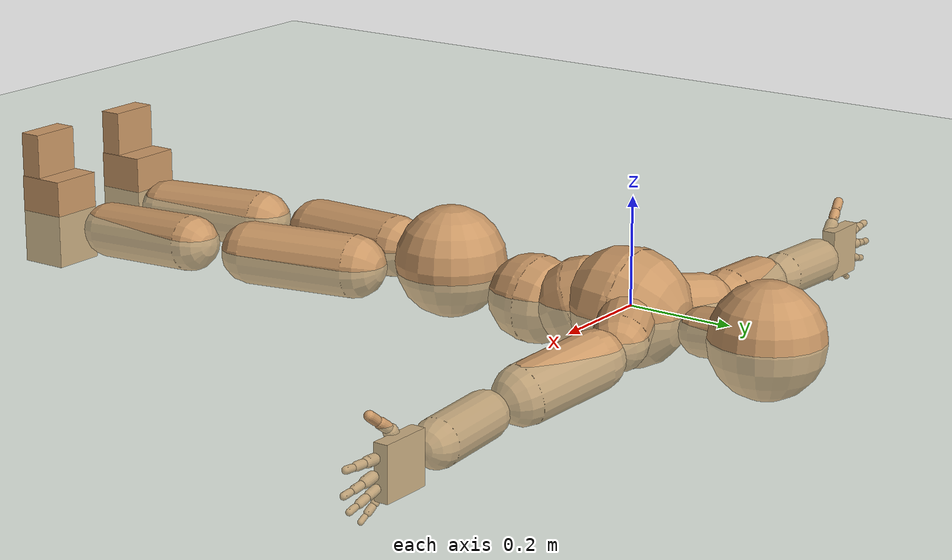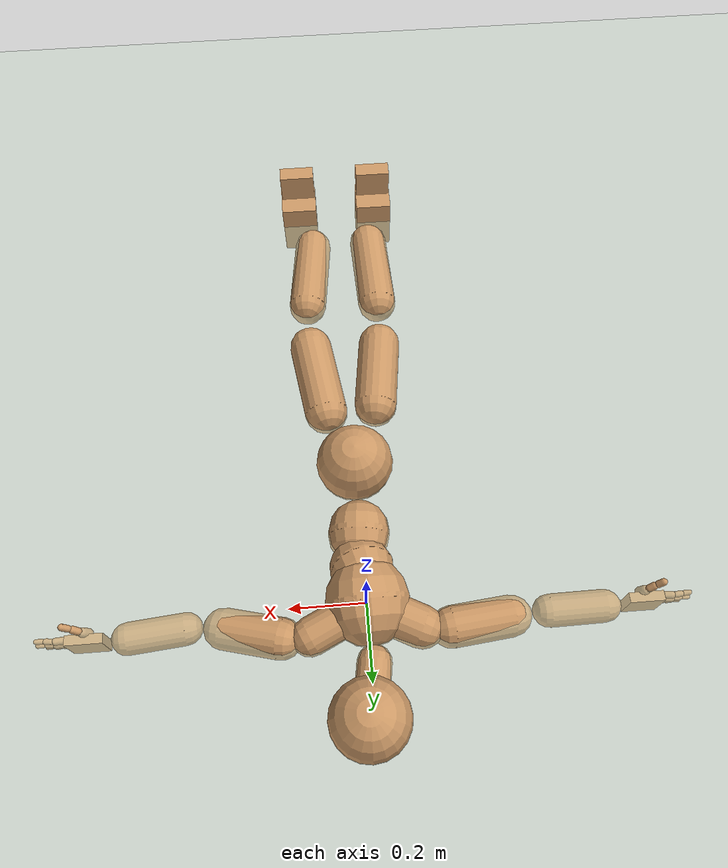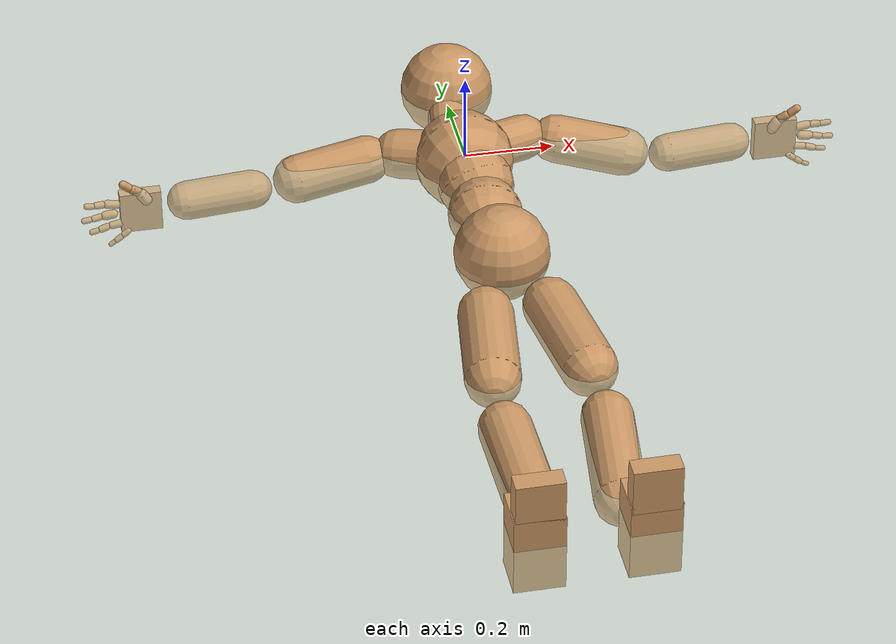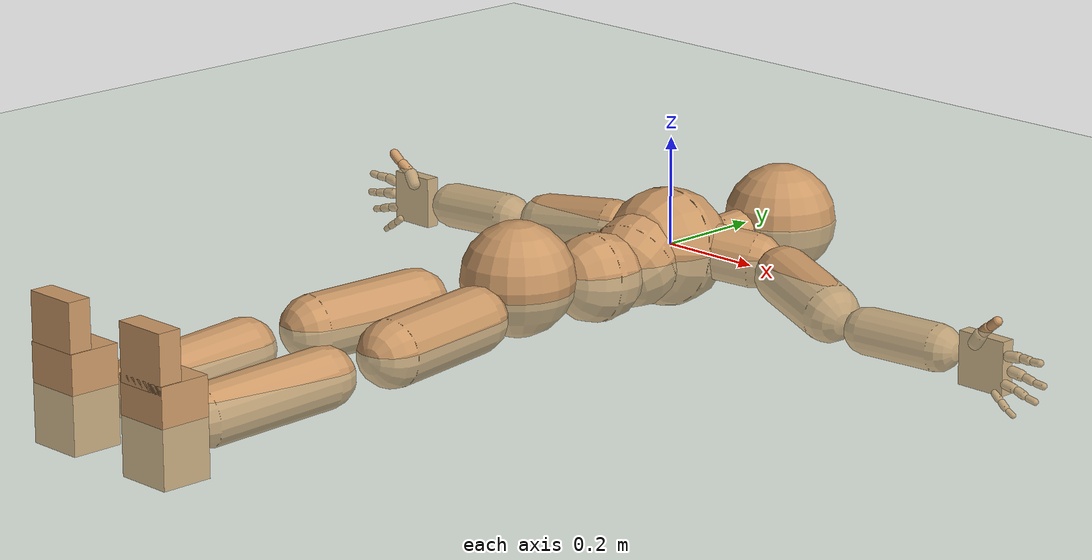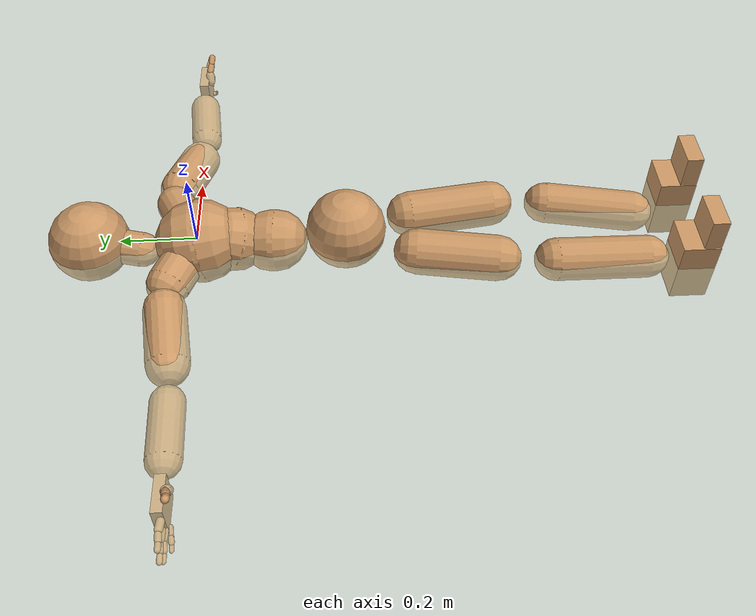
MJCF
<mujoco model="humanoid">
  <compiler coordinate="local"/>
  <default>
    <joint damping="0.0" armature="0.01" stiffness="0.0" limited="true"/>
    <geom conaffinity="1" condim="3" contype="7" margin="0.001" rgba="0.8 0.6 .4 1"/>
  </default>
  <asset>
    <texture type="skybox" builtin="gradient" rgb1=".4 .5 .6" rgb2="0 0 0" width="100" height="100"/>
    <texture builtin="flat" height="1278" mark="cross" markrgb="1 1 1" name="texgeom" random="0.01" rgb1="0.8 0.6 0.4" rgb2="0.8 0.6 0.4" type="cube" width="127"/>
    <texture builtin="checker" height="100" name="texplane" rgb1="0 0 0" rgb2="0.8 0.8 0.8" type="2d" width="100"/>
    <material name="MatPlane" reflectance="0.5" shininess="1" specular="1" texrepeat="60 60" texture="texplane"/>
    <material name="geom" texture="texgeom" texuniform="true"/>
  </asset>
  <worldbody>
    <light cutoff="100" diffuse="1 1 1" dir="-0 0 -1.3" directional="true" exponent="1" pos="0 0 1.3" specular=".1 .1 .1"/>
    <geom conaffinity="1" condim="3" name="floor" pos="0 0 0" rgba="0.8 0.9 0.8 1" size="100 100 .2" type="plane" material="MatPlane"/>
    <body name="Pelvis" pos="0.003 -0.389 0.0154">
      <freejoint name="Pelvis"/>
      <geom type="sphere" contype="1" conaffinity="1" density="4629.6296296296305" size="0.1043" pos="0.0000 0.0000 0.0000" name="Pelvis"/>
      <body name="L_Hip" pos="0.0582 -0.0978 -0.0232">
        <joint name="L_Hip_x" type="hinge" pos="0 0 0" axis="1 0 0" user="250 2.5 1 500 10 2" armature="0.01" range="-90.0000 90.0000" damping="0" stiffness="0"/>
        <joint name="L_Hip_y" type="hinge" pos="0 0 0" axis="0 1 0" user="250 2.5 1 500 10 2" armature="0.01" range="-90.0000 90.0000" damping="0" stiffness="0"/>
        <joint name="L_Hip_z" type="hinge" pos="0 0 0" axis="0 0 1" user="250 2.5 1 500 10 2" armature="0.01" range="-90.0000 90.0000" damping="0" stiffness="0"/>
        <geom type="capsule" contype="1" conaffinity="1" density="2040.816327" fromto="0.0112 -0.0735 -0.0010 0.0447 -0.2940 -0.0039" size="0.0604" name="L_Hip"/>
        <body name="L_Knee" pos="0.0559 -0.3674 -0.0049">
          <joint name="L_Knee_x" type="hinge" pos="0 0 0" axis="1 0 0" user="250 2.5 1 500 10 2" armature="0.01" range="-180.0000 180.0000" damping="0" stiffness="0"/>
          <joint name="L_Knee_y" type="hinge" pos="0 0 0" axis="0 1 0" user="250 2.5 1 500 10 2" armature="0.01" range="-5.6250 5.6250" damping="0" stiffness="0"/>
          <joint name="L_Knee_z" type="hinge" pos="0 0 0" axis="0 0 1" user="250 2.5 1 500 10 2" armature="0.01" range="-5.6250 5.6250" damping="0" stiffness="0"/>
          <geom type="capsule" contype="1" conaffinity="1" density="1234.567901" fromto="-0.0090 -0.0787 -0.0061 -0.0358 -0.3149 -0.0245" size="0.0545" name="L_Knee"/>
          <body name="L_Ankle" pos="-0.0448 -0.3936 -0.0307">
            <joint name="L_Ankle_x" type="hinge" pos="0 0 0" axis="1 0 0" user="150 2.5 1 500 10 2" armature="0.01" range="-90.0000 90.0000" damping="0" stiffness="0"/>
            <joint name="L_Ankle_y" type="hinge" pos="0 0 0" axis="0 1 0" user="150 2.5 1 500 10 2" armature="0.01" range="-90.0000 90.0000" damping="0" stiffness="0"/>
            <joint name="L_Ankle_z" type="hinge" pos="0 0 0" axis="0 0 1" user="150 2.5 1 500 10 2" armature="0.01" range="-90.0000 90.0000" damping="0" stiffness="0"/>
            <geom type="box" density="452.943956" pos="0.0433 -0.0277 0.0240" size="0.0524 0.0473 0.0876" quat="1.0000 0.0000 0.0000 0.0000" name="L_Ankle"/>
            <body name="L_Toe" pos="0.0503 -0.0568 0.1213">
              <joint name="L_Toe_x" type="hinge" pos="0 0 0" axis="1 0 0" user="150 1 1 500 1 1" armature="0.01" range="-90.0000 90.0000" damping="0" stiffness="0"/>
              <joint name="L_Toe_y" type="hinge" pos="0 0 0" axis="0 1 0" user="150 1 1 500 1 1" armature="0.01" range="-45.0000 45.0000" damping="0" stiffness="0"/>
              <joint name="L_Toe_z" type="hinge" pos="0 0 0" axis="0 0 1" user="150 1 1 500 1 1" armature="0.01" range="-45.0000 45.0000" damping="0" stiffness="0"/>
              <geom type="box" density="421.553958" pos="-0.0071 0.0033 0.0264" size="0.05 0.0215 0.0514" quat="1.0000 0.0000 0.0000 0.0000" name="L_Toe"/>
            </body>
          </body>
        </body>
      </body>
      <body name="R_Hip" pos="-0.0629 -0.1105 -0.0172">
        <joint name="R_Hip_x" type="hinge" pos="0 0 0" axis="1 0 0" user="250 2.5 1 500 10 2" armature="0.01" range="-90.0000 90.0000" damping="0" stiffness="0"/>
        <joint name="R_Hip_y" type="hinge" pos="0 0 0" axis="0 1 0" user="250 2.5 1 500 10 2" armature="0.01" range="-90.0000 90.0000" damping="0" stiffness="0"/>
        <joint name="R_Hip_z" type="hinge" pos="0 0 0" axis="0 0 1" user="250 2.5 1 500 10 2" armature="0.01" range="-90.0000 90.0000" damping="0" stiffness="0"/>
        <geom type="capsule" contype="1" conaffinity="1" density="2040.816327" fromto="-0.0091 -0.0699 -0.0027 -0.0364 -0.2796 -0.0108" size="0.0597" name="R_Hip"/>
        <body name="R_Knee" pos="-0.0454 -0.3495 -0.0135">
          <joint name="R_Knee_x" type="hinge" pos="0 0 0" axis="1 0 0" user="250 2.5 1 500 10 2" armature="0.01" range="-180.0000 180.0000" damping="0" stiffness="0"/>
          <joint name="R_Knee_y" type="hinge" pos="0 0 0" axis="0 1 0" user="250 2.5 1 500 10 2" armature="0.01" range="-5.6250 5.6250" damping="0" stiffness="0"/>
          <joint name="R_Knee_z" type="hinge" pos="0 0 0" axis="0 0 1" user="250 2.5 1 500 10 2" armature="0.01" range="-5.6250 5.6250" damping="0" stiffness="0"/>
          <geom type="capsule" contype="1" conaffinity="1" density="1234.567901" fromto="0.0031 -0.0802 -0.0037 0.0122 -0.3209 -0.0150" size="0.0561" name="R_Knee"/>
          <body name="R_Ankle" pos="0.0153 -0.4011 -0.0187">
            <joint name="R_Ankle_x" type="hinge" pos="0 0 0" axis="1 0 0" user="150 1 1 500 10 2" armature="0.01" range="-90.0000 90.0000" damping="0" stiffness="0"/>
            <joint name="R_Ankle_y" type="hinge" pos="0 0 0" axis="0 1 0" user="150 1 1 500 10 2" armature="0.01" range="-90.0000 90.0000" damping="0" stiffness="0"/>
            <joint name="R_Ankle_z" type="hinge" pos="0 0 0" axis="0 0 1" user="150 1 1 500 10 2" armature="0.01" range="-90.0000 90.0000" damping="0" stiffness="0"/>
            <geom type="box" density="452.937072" pos="-0.0255 -0.0254 0.0146" size="0.0524 0.0473 0.0876" quat="1.0000 0.0000 0.0000 0.0000" name="R_Ankle"/>
            <body name="R_Toe" pos="-0.0409 -0.0572 0.1221">
              <joint name="R_Toe_x" type="hinge" pos="0 0 0" axis="1 0 0" user="150 1 1 500 1 1" armature="0.01" range="-90.0000 90.0000" damping="0" stiffness="0"/>
              <joint name="R_Toe_y" type="hinge" pos="0 0 0" axis="0 1 0" user="150 1 1 500 1 1" armature="0.01" range="-45.0000 45.0000" damping="0" stiffness="0"/>
              <joint name="R_Toe_z" type="hinge" pos="0 0 0" axis="0 0 1" user="150 1 1 500 1 1" armature="0.01" range="-45.0000 45.0000" damping="0" stiffness="0"/>
              <geom type="box" density="421.555447" pos="0.0155 0.0060 0.0162" size="0.05 0.0215 0.0514" quat="1.0000 0.0000 0.0000 0.0000" name="R_Toe"/>
            </body>
          </body>
        </body>
      </body>
      <body name="Torso" pos="-0.0028 0.1169 -0.0329">
        <joint name="Torso_x" type="hinge" pos="0 0 0" axis="1 0 0" user="500 5 1 500 10 2" armature="0.01" range="-60.0000 60.0000" damping="0" stiffness="0"/>
        <joint name="Torso_y" type="hinge" pos="0 0 0" axis="0 1 0" user="500 5 1 500 10 2" armature="0.01" range="-60.0000 60.0000" damping="0" stiffness="0"/>
        <joint name="Torso_z" type="hinge" pos="0 0 0" axis="0 0 1" user="500 5 1 500 10 2" armature="0.01" range="-60.0000 60.0000" damping="0" stiffness="0"/>
        <geom type="capsule" contype="1" conaffinity="1" density="2040.816327" fromto="0.0050 0.0664 -0.0035 0.0061 0.0811 -0.0043" size="0.0816" name="Torso"/>
        <body name="Spine" pos="0.0111 0.1475 -0.0077">
          <joint name="Spine_x" type="hinge" pos="0 0 0" axis="1 0 0" user="500 5 1 500 10 2" armature="0.01" range="-60.0000 60.0000" damping="0" stiffness="0"/>
          <joint name="Spine_y" type="hinge" pos="0 0 0" axis="0 1 0" user="500 5 1 500 10 2" armature="0.01" range="-60.0000 60.0000" damping="0" stiffness="0"/>
          <joint name="Spine_z" type="hinge" pos="0 0 0" axis="0 0 1" user="500 5 1 500 10 2" armature="0.01" range="-60.0000 60.0000" damping="0" stiffness="0"/>
          <geom type="capsule" contype="1" conaffinity="1" density="2040.816327" fromto="-0.0054 0.0265 0.0132 -0.0066 0.0323 0.0161" size="0.0843" name="Spine"/>
          <body name="Chest" pos="-0.0119 0.0588 0.0293">
            <joint name="Chest_x" type="hinge" pos="0 0 0" axis="1 0 0" user="500 5 1 500 10 2" armature="0.01" range="-60.0000 60.0000" damping="0" stiffness="0"/>
            <joint name="Chest_y" type="hinge" pos="0 0 0" axis="0 1 0" user="500 5 1 500 10 2" armature="0.01" range="-60.0000 60.0000" damping="0" stiffness="0"/>
            <joint name="Chest_z" type="hinge" pos="0 0 0" axis="0 0 1" user="500 5 1 500 10 2" armature="0.01" range="-60.0000 60.0000" damping="0" stiffness="0"/>
            <geom type="capsule" contype="1" conaffinity="1" density="2040.816327" fromto="-0.0025 0.0534 -0.0076 -0.0031 0.0652 -0.0092" size="0.1094" name="Chest"/>
            <body name="Neck" pos="-0.0136 0.176 -0.0315">
              <joint name="Neck_x" type="hinge" pos="0 0 0" axis="1 0 0" user="150 1 1 250 50 4" armature="0.01" range="-180.0000 180.0000" damping="0" stiffness="0"/>
              <joint name="Neck_y" type="hinge" pos="0 0 0" axis="0 1 0" user="150 1 1 250 50 4" armature="0.01" range="-180.0000 180.0000" damping="0" stiffness="0"/>
              <joint name="Neck_z" type="hinge" pos="0 0 0" axis="0 0 1" user="150 1 1 250 50 4" armature="0.01" range="-180.0000 180.0000" damping="0" stiffness="0"/>
              <geom type="capsule" contype="1" conaffinity="1" density="1000" fromto="0.0053 0.0342 0.0042 0.0213 0.1369 0.0166" size="0.0453" name="Neck"/>
              <body name="Head" pos="0.0267 0.1711 0.0208">
                <joint name="Head_x" type="hinge" pos="0 0 0" axis="1 0 0" user="150 1 1 250 50 4" armature="0.01" range="-90.0000 90.0000" damping="0" stiffness="0"/>
                <joint name="Head_y" type="hinge" pos="0 0 0" axis="0 1 0" user="150 1 1 250 50 4" armature="0.01" range="-90.0000 90.0000" damping="0" stiffness="0"/>
                <joint name="Head_z" type="hinge" pos="0 0 0" axis="0 0 1" user="150 1 1 250 50 4" armature="0.01" range="-90.0000 90.0000" damping="0" stiffness="0"/>
                <geom type="sphere" contype="1" conaffinity="1" density="1000" size="0.1048" pos="0.0000 0.0000 0.0000" name="Head"/>
              </body>
            </body>
            <body name="L_Thorax" pos="0.0477 0.0902 -0.0063">
              <joint name="L_Thorax_x" type="hinge" pos="0 0 0" axis="1 0 0" user="200 2 1 500 50 4" armature="0.01" range="-180.0000 180.0000" damping="0" stiffness="0"/>
              <joint name="L_Thorax_y" type="hinge" pos="0 0 0" axis="0 1 0" user="200 2 1 500 50 4" armature="0.01" range="-180.0000 180.0000" damping="0" stiffness="0"/>
              <joint name="L_Thorax_z" type="hinge" pos="0 0 0" axis="0 0 1" user="200 2 1 500 50 4" armature="0.01" range="-180.0000 180.0000" damping="0" stiffness="0"/>
              <geom type="capsule" contype="1" conaffinity="1" density="1000" fromto="0.0249 0.0113 -0.0033 0.0997 0.0452 -0.0130" size="0.0513" name="L_Thorax"/>
              <body name="L_Shoulder" pos="0.1246 0.0565 -0.0163">
                <joint name="L_Shoulder_x" type="hinge" pos="0 0 0" axis="1 0 0" user="200 2 1 500 50 4" armature="0.01" range="-180.0000 180.0000" damping="0" stiffness="0"/>
                <joint name="L_Shoulder_y" type="hinge" pos="0 0 0" axis="0 1 0" user="200 2 1 500 50 4" armature="0.01" range="-180.0000 180.0000" damping="0" stiffness="0"/>
                <joint name="L_Shoulder_z" type="hinge" pos="0 0 0" axis="0 0 1" user="200 2 1 500 50 4" armature="0.01" range="-180.0000 180.0000" damping="0" stiffness="0"/>
                <geom type="capsule" contype="1" conaffinity="1" density="1000" fromto="0.0496 -0.0142 -0.0091 0.1984 -0.0570 -0.0364" size="0.0544" name="L_Shoulder"/>
                <body name="L_Elbow" pos="0.248 -0.0712 -0.0455">
                  <joint name="L_Elbow_x" type="hinge" pos="0 0 0" axis="1 0 0" user="150 1 1 150 10 2" armature="0.01" range="-720.0000 720.0000" damping="0" stiffness="0"/>
                  <joint name="L_Elbow_y" type="hinge" pos="0 0 0" axis="0 1 0" user="150 1 1 150 10 2" armature="0.01" range="-720.0000 720.0000" damping="0" stiffness="0"/>
                  <joint name="L_Elbow_z" type="hinge" pos="0 0 0" axis="0 0 1" user="150 1 1 150 10 2" armature="0.01" range="-720.0000 720.0000" damping="0" stiffness="0"/>
                  <geom type="capsule" contype="1" conaffinity="1" density="1000" fromto="0.0500 0.0047 0.0001 0.1999 0.0188 0.0004" size="0.0429" name="L_Elbow"/>
                  <body name="L_Wrist" pos="0.2498 0.0235 0.0005">
                    <joint name="L_Wrist_x" type="hinge" pos="0 0 0" axis="1 0 0" user="100 1 1 150 1 1" armature="0.01" range="-180.0000 180.0000" damping="0" stiffness="0"/>
                    <joint name="L_Wrist_y" type="hinge" pos="0 0 0" axis="0 1 0" user="100 1 1 150 1 1" armature="0.01" range="-180.0000 180.0000" damping="0" stiffness="0"/>
                    <joint name="L_Wrist_z" type="hinge" pos="0 0 0" axis="0 0 1" user="100 1 1 150 1 1" armature="0.01" range="-180.0000 180.0000" damping="0" stiffness="0"/>
                    <geom type="box" density="1219.027001" pos="0.0528 -0.0012 -0.0026" size="0.0488 0.0131 0.0488" quat="1.0000 0.0000 0.0000 0.0000" name="L_Wrist"/>
                    <body name="L_Index1" pos="0.1026 -0.008 0.021">
                      <joint name="L_Index1_x" type="hinge" pos="0 0 0" axis="1 0 0" user="100 10 1 150" armature="0.01" range="-180.0000 180.0000" damping="0" stiffness="0"/>
                      <joint name="L_Index1_y" type="hinge" pos="0 0 0" axis="0 1 0" user="100 10 1 150" armature="0.01" range="-180.0000 180.0000" damping="0" stiffness="0"/>
                      <joint name="L_Index1_z" type="hinge" pos="0 0 0" axis="0 0 1" user="100 10 1 150" armature="0.01" range="-180.0000 180.0000" damping="0" stiffness="0"/>
                      <geom type="capsule" contype="1" conaffinity="1" density="1000" fromto="0.0065 0.0005 0.0006 0.0260 0.0020 0.0024" size="0.0097" name="L_Index1"/>
                      <body name="L_Index2" pos="0.0325 0.0025 0.003">
                        <joint name="L_Index2_x" type="hinge" pos="0 0 0" axis="1 0 0" user="100 10 1 150" armature="0.01" range="-180.0000 180.0000" damping="0" stiffness="0"/>
                        <joint name="L_Index2_y" type="hinge" pos="0 0 0" axis="0 1 0" user="100 10 1 150" armature="0.01" range="-180.0000 180.0000" damping="0" stiffness="0"/>
                        <joint name="L_Index2_z" type="hinge" pos="0 0 0" axis="0 0 1" user="100 10 1 150" armature="0.01" range="-180.0000 180.0000" damping="0" stiffness="0"/>
                        <geom type="capsule" contype="1" conaffinity="1" density="1000" fromto="0.0046 -0.0005 -0.0000 0.0183 -0.0020 -0.0001" size="0.008" name="L_Index2"/>
                        <body name="L_Index3" pos="0.0228 -0.0025 -0.0002">
                          <joint name="L_Index3_x" type="hinge" pos="0 0 0" axis="1 0 0" user="100 10 1 150" armature="0.01" range="-180.0000 180.0000" damping="0" stiffness="0"/>
                          <joint name="L_Index3_y" type="hinge" pos="0 0 0" axis="0 1 0" user="100 10 1 150" armature="0.01" range="-180.0000 180.0000" damping="0" stiffness="0"/>
                          <joint name="L_Index3_z" type="hinge" pos="0 0 0" axis="0 0 1" user="100 10 1 150" armature="0.01" range="-180.0000 180.0000" damping="0" stiffness="0"/>
                          <geom type="capsule" contype="1" conaffinity="1" density="1000" fromto="0.0050 -0.0001 0.0004 0.0199 -0.0004 0.0015" size="0.0067" name="L_Index3"/>
                        </body>
                      </body>
                    </body>
                    <body name="L_Middle1" pos="0.1104 -0.0055 -0.0038">
                      <joint name="L_Middle1_x" type="hinge" pos="0 0 0" axis="1 0 0" user="100 10 1 150" armature="0.01" range="-180.0000 180.0000" damping="0" stiffness="0"/>
                      <joint name="L_Middle1_y" type="hinge" pos="0 0 0" axis="0 1 0" user="100 10 1 150" armature="0.01" range="-180.0000 180.0000" damping="0" stiffness="0"/>
                      <joint name="L_Middle1_z" type="hinge" pos="0 0 0" axis="0 0 1" user="100 10 1 150" armature="0.01" range="-180.0000 180.0000" damping="0" stiffness="0"/>
                      <geom type="capsule" contype="1" conaffinity="1" density="1000" fromto="0.0062 0.0002 -0.0008 0.0249 0.0007 -0.0033" size="0.01" name="L_Middle1"/>
                      <body name="L_Middle2" pos="0.0311 0.0009 -0.0041">
                        <joint name="L_Middle2_x" type="hinge" pos="0 0 0" axis="1 0 0" user="100 10 1 150" armature="0.01" range="-180.0000 180.0000" damping="0" stiffness="0"/>
                        <joint name="L_Middle2_y" type="hinge" pos="0 0 0" axis="0 1 0" user="100 10 1 150" armature="0.01" range="-180.0000 180.0000" damping="0" stiffness="0"/>
                        <joint name="L_Middle2_z" type="hinge" pos="0 0 0" axis="0 0 1" user="100 10 1 150" armature="0.01" range="-180.0000 180.0000" damping="0" stiffness="0"/>
                        <geom type="capsule" contype="1" conaffinity="1" density="1000" fromto="0.0047 -0.0004 -0.0009 0.0190 -0.0017 -0.0034" size="0.0074" name="L_Middle2"/>
                        <body name="L_Middle3" pos="0.0237 -0.0022 -0.0043">
                          <joint name="L_Middle3_x" type="hinge" pos="0 0 0" axis="1 0 0" user="100 10 1 150" armature="0.01" range="-180.0000 180.0000" damping="0" stiffness="0"/>
                          <joint name="L_Middle3_y" type="hinge" pos="0 0 0" axis="0 1 0" user="100 10 1 150" armature="0.01" range="-180.0000 180.0000" damping="0" stiffness="0"/>
                          <joint name="L_Middle3_z" type="hinge" pos="0 0 0" axis="0 0 1" user="100 10 1 150" armature="0.01" range="-180.0000 180.0000" damping="0" stiffness="0"/>
                          <geom type="capsule" contype="1" conaffinity="1" density="1000" fromto="0.0051 -0.0000 -0.0005 0.0206 -0.0001 -0.0018" size="0.0064" name="L_Middle3"/>
                        </body>
                      </body>
                    </body>
                    <body name="L_Pinky1" pos="0.0845 -0.0145 -0.046">
                      <joint name="L_Pinky1_x" type="hinge" pos="0 0 0" axis="1 0 0" user="100 10 1 150" armature="0.01" range="-180.0000 180.0000" damping="0" stiffness="0"/>
                      <joint name="L_Pinky1_y" type="hinge" pos="0 0 0" axis="0 1 0" user="100 10 1 150" armature="0.01" range="-180.0000 180.0000" damping="0" stiffness="0"/>
                      <joint name="L_Pinky1_z" type="hinge" pos="0 0 0" axis="0 0 1" user="100 10 1 150" armature="0.01" range="-180.0000 180.0000" damping="0" stiffness="0"/>
                      <geom type="capsule" contype="1" conaffinity="1" density="1000" fromto="0.0032 -0.0003 -0.0025 0.0130 -0.0011 -0.0099" size="0.0071" name="L_Pinky1"/>
                      <body name="L_Pinky2" pos="0.0162 -0.0013 -0.0124">
                        <joint name="L_Pinky2_x" type="hinge" pos="0 0 0" axis="1 0 0" user="100 10 1 150" armature="0.01" range="-180.0000 180.0000" damping="0" stiffness="0"/>
                        <joint name="L_Pinky2_y" type="hinge" pos="0 0 0" axis="0 1 0" user="100 10 1 150" armature="0.01" range="-180.0000 180.0000" damping="0" stiffness="0"/>
                        <joint name="L_Pinky2_z" type="hinge" pos="0 0 0" axis="0 0 1" user="100 10 1 150" armature="0.01" range="-180.0000 180.0000" damping="0" stiffness="0"/>
                        <geom type="capsule" contype="1" conaffinity="1" density="1000" fromto="0.0032 -0.0004 -0.0023 0.0128 -0.0015 -0.0091" size="0.0068" name="L_Pinky2"/>
                        <body name="L_Pinky3" pos="0.0161 -0.0019 -0.0113">
                          <joint name="L_Pinky3_x" type="hinge" pos="0 0 0" axis="1 0 0" user="100 10 1 150" armature="0.01" range="-180.0000 180.0000" damping="0" stiffness="0"/>
                          <joint name="L_Pinky3_y" type="hinge" pos="0 0 0" axis="0 1 0" user="100 10 1 150" armature="0.01" range="-180.0000 180.0000" damping="0" stiffness="0"/>
                          <joint name="L_Pinky3_z" type="hinge" pos="0 0 0" axis="0 0 1" user="100 10 1 150" armature="0.01" range="-180.0000 180.0000" damping="0" stiffness="0"/>
                          <geom type="capsule" contype="1" conaffinity="1" density="1000" fromto="0.0036 0.0000 -0.0019 0.0144 0.0001 -0.0075" size="0.0051" name="L_Pinky3"/>
                        </body>
                      </body>
                    </body>
                    <body name="L_Ring1" pos="0.0982 -0.0087 -0.0287">
                      <joint name="L_Ring1_x" type="hinge" pos="0 0 0" axis="1 0 0" user="100 10 1 150" armature="0.01" range="-180.0000 180.0000" damping="0" stiffness="0"/>
                      <joint name="L_Ring1_y" type="hinge" pos="0 0 0" axis="0 1 0" user="100 10 1 150" armature="0.01" range="-180.0000 180.0000" damping="0" stiffness="0"/>
                      <joint name="L_Ring1_z" type="hinge" pos="0 0 0" axis="0 0 1" user="100 10 1 150" armature="0.01" range="-180.0000 180.0000" damping="0" stiffness="0"/>
                      <geom type="capsule" contype="1" conaffinity="1" density="1000" fromto="0.0058 0.0003 -0.0011 0.0231 0.0013 -0.0043" size="0.0085" name="L_Ring1"/>
                      <body name="L_Ring2" pos="0.0288 0.0016 -0.0054">
                        <joint name="L_Ring2_x" type="hinge" pos="0 0 0" axis="1 0 0" user="100 10 1 150" armature="0.01" range="-180.0000 180.0000" damping="0" stiffness="0"/>
                        <joint name="L_Ring2_y" type="hinge" pos="0 0 0" axis="0 1 0" user="100 10 1 150" armature="0.01" range="-180.0000 180.0000" damping="0" stiffness="0"/>
                        <joint name="L_Ring2_z" type="hinge" pos="0 0 0" axis="0 0 1" user="100 10 1 150" armature="0.01" range="-180.0000 180.0000" damping="0" stiffness="0"/>
                        <geom type="capsule" contype="1" conaffinity="1" density="1000" fromto="0.0047 -0.0003 -0.0014 0.0186 -0.0013 -0.0058" size="0.0078" name="L_Ring2"/>
                        <body name="L_Ring3" pos="0.0233 -0.0017 -0.0072">
                          <joint name="L_Ring3_x" type="hinge" pos="0 0 0" axis="1 0 0" user="100 10 1 150" armature="0.01" range="-180.0000 180.0000" damping="0" stiffness="0"/>
                          <joint name="L_Ring3_y" type="hinge" pos="0 0 0" axis="0 1 0" user="100 10 1 150" armature="0.01" range="-180.0000 180.0000" damping="0" stiffness="0"/>
                          <joint name="L_Ring3_z" type="hinge" pos="0 0 0" axis="0 0 1" user="100 10 1 150" armature="0.01" range="-180.0000 180.0000" damping="0" stiffness="0"/>
                          <geom type="capsule" contype="1" conaffinity="1" density="1000" fromto="0.0051 0.0001 -0.0010 0.0202 0.0003 -0.0042" size="0.006" name="L_Ring3"/>
                        </body>
                      </body>
                    </body>
                    <body name="L_Thumb1" pos="0.0401 -0.0189 0.0279">
                      <joint name="L_Thumb1_x" type="hinge" pos="0 0 0" axis="1 0 0" user="100 10 1 150" armature="0.01" range="-180.0000 180.0000" damping="0" stiffness="0"/>
                      <joint name="L_Thumb1_y" type="hinge" pos="0 0 0" axis="0 1 0" user="100 10 1 150" armature="0.01" range="-180.0000 180.0000" damping="0" stiffness="0"/>
                      <joint name="L_Thumb1_z" type="hinge" pos="0 0 0" axis="0 0 1" user="100 10 1 150" armature="0.01" range="-180.0000 180.0000" damping="0" stiffness="0"/>
                      <geom type="capsule" contype="1" conaffinity="1" density="1000" fromto="0.0034 0.0003 0.0053 0.0137 0.0011 0.0211" size="0.0127" name="L_Thumb1"/>
                      <body name="L_Thumb2" pos="0.0171 0.0013 0.0263">
                        <joint name="L_Thumb2_x" type="hinge" pos="0 0 0" axis="1 0 0" user="100 10 1 150" armature="0.01" range="-180.0000 180.0000" damping="0" stiffness="0"/>
                        <joint name="L_Thumb2_y" type="hinge" pos="0 0 0" axis="0 1 0" user="100 10 1 150" armature="0.01" range="-180.0000 180.0000" damping="0" stiffness="0"/>
                        <joint name="L_Thumb2_z" type="hinge" pos="0 0 0" axis="0 0 1" user="100 10 1 150" armature="0.01" range="-180.0000 180.0000" damping="0" stiffness="0"/>
                        <geom type="capsule" contype="1" conaffinity="1" density="1000" fromto="0.0042 -0.0011 0.0032 0.0166 -0.0043 0.0128" size="0.0101" name="L_Thumb2"/>
                        <body name="L_Thumb3" pos="0.0208 -0.0053 0.016">
                          <joint name="L_Thumb3_x" type="hinge" pos="0 0 0" axis="1 0 0" user="100 10 1 150" armature="0.01" range="-180.0000 180.0000" damping="0" stiffness="0"/>
                          <joint name="L_Thumb3_y" type="hinge" pos="0 0 0" axis="0 1 0" user="100 10 1 150" armature="0.01" range="-180.0000 180.0000" damping="0" stiffness="0"/>
                          <joint name="L_Thumb3_z" type="hinge" pos="0 0 0" axis="0 0 1" user="100 10 1 150" armature="0.01" range="-180.0000 180.0000" damping="0" stiffness="0"/>
                          <geom type="capsule" contype="1" conaffinity="1" density="1000" fromto="0.0046 -0.0007 0.0036 0.0182 -0.0027 0.0144" size="0.0091" name="L_Thumb3"/>
                        </body>
                      </body>
                    </body>
                  </body>
                </body>
              </body>
            </body>
            <body name="R_Thorax" pos="-0.0509 0.0895 -0.0125">
              <joint name="R_Thorax_x" type="hinge" pos="0 0 0" axis="1 0 0" user="200 2 1 150 10 2" armature="0.01" range="-180.0000 180.0000" damping="0" stiffness="0"/>
              <joint name="R_Thorax_y" type="hinge" pos="0 0 0" axis="0 1 0" user="200 2 1 150 10 2" armature="0.01" range="-180.0000 180.0000" damping="0" stiffness="0"/>
              <joint name="R_Thorax_z" type="hinge" pos="0 0 0" axis="0 0 1" user="200 2 1 150 10 2" armature="0.01" range="-180.0000 180.0000" damping="0" stiffness="0"/>
              <geom type="capsule" contype="1" conaffinity="1" density="1000" fromto="-0.0215 0.0104 -0.0028 -0.0858 0.0417 -0.0111" size="0.0564" name="R_Thorax"/>
              <body name="R_Shoulder" pos="-0.1073 0.0522 -0.0139">
                <joint name="R_Shoulder_x" type="hinge" pos="0 0 0" axis="1 0 0" user="200 2 1 250 10 2" armature="0.01" range="-180.0000 180.0000" damping="0" stiffness="0"/>
                <joint name="R_Shoulder_y" type="hinge" pos="0 0 0" axis="0 1 0" user="200 2 1 250 10 2" armature="0.01" range="-180.0000 180.0000" damping="0" stiffness="0"/>
                <joint name="R_Shoulder_z" type="hinge" pos="0 0 0" axis="0 0 1" user="200 2 1 250 10 2" armature="0.01" range="-180.0000 180.0000" damping="0" stiffness="0"/>
                <geom type="capsule" contype="1" conaffinity="1" density="1000" fromto="-0.0531 -0.0067 -0.0057 -0.2124 -0.0270 -0.0228" size="0.0542" name="R_Shoulder"/>
                <body name="R_Elbow" pos="-0.2655 -0.0337 -0.0285">
                  <joint name="R_Elbow_x" type="hinge" pos="0 0 0" axis="1 0 0" user="150 1 1 150 10 2" armature="0.01" range="-720.0000 720.0000" damping="0" stiffness="0"/>
                  <joint name="R_Elbow_y" type="hinge" pos="0 0 0" axis="0 1 0" user="150 1 1 150 10 2" armature="0.01" range="-720.0000 720.0000" damping="0" stiffness="0"/>
                  <joint name="R_Elbow_z" type="hinge" pos="0 0 0" axis="0 0 1" user="150 1 1 150 10 2" armature="0.01" range="-720.0000 720.0000" damping="0" stiffness="0"/>
                  <geom type="capsule" contype="1" conaffinity="1" density="1000" fromto="-0.0494 -0.0012 -0.0025 -0.1976 -0.0047 -0.0101" size="0.0432" name="R_Elbow"/>
                  <body name="R_Wrist" pos="-0.247 -0.0058 -0.0126">
                    <joint name="R_Wrist_x" type="hinge" pos="0 0 0" axis="1 0 0" user="100 1 1 150 1 1" armature="0.01" range="-180.0000 180.0000" damping="0" stiffness="0"/>
                    <joint name="R_Wrist_y" type="hinge" pos="0 0 0" axis="0 1 0" user="100 1 1 150 1 1" armature="0.01" range="-180.0000 180.0000" damping="0" stiffness="0"/>
                    <joint name="R_Wrist_z" type="hinge" pos="0 0 0" axis="0 0 1" user="100 1 1 150 1 1" armature="0.01" range="-180.0000 180.0000" damping="0" stiffness="0"/>
                    <geom type="box" density="1248.341406" pos="-0.0542 -0.0044 -0.0027" size="0.046 0.0131 0.0488" quat="1.0000 0.0000 0.0000 0.0000" name="R_Wrist"/>
                    <body name="R_Index1" pos="-0.1008 -0.0112 0.0209">
                      <joint name="R_Index1_x" type="hinge" pos="0 0 0" axis="1 0 0" user="100 10 1 150" armature="0.01" range="-180.0000 180.0000" damping="0" stiffness="0"/>
                      <joint name="R_Index1_y" type="hinge" pos="0 0 0" axis="0 1 0" user="100 10 1 150" armature="0.01" range="-180.0000 180.0000" damping="0" stiffness="0"/>
                      <joint name="R_Index1_z" type="hinge" pos="0 0 0" axis="0 0 1" user="100 10 1 150" armature="0.01" range="-180.0000 180.0000" damping="0" stiffness="0"/>
                      <geom type="capsule" contype="1" conaffinity="1" density="1000" fromto="-0.0065 0.0005 0.0006 -0.0260 0.0020 0.0024" size="0.0097" name="R_Index1"/>
                      <body name="R_Index2" pos="-0.0325 0.0025 0.003">
                        <joint name="R_Index2_x" type="hinge" pos="0 0 0" axis="1 0 0" user="100 10 1 150" armature="0.01" range="-180.0000 180.0000" damping="0" stiffness="0"/>
                        <joint name="R_Index2_y" type="hinge" pos="0 0 0" axis="0 1 0" user="100 10 1 150" armature="0.01" range="-180.0000 180.0000" damping="0" stiffness="0"/>
                        <joint name="R_Index2_z" type="hinge" pos="0 0 0" axis="0 0 1" user="100 10 1 150" armature="0.01" range="-180.0000 180.0000" damping="0" stiffness="0"/>
                        <geom type="capsule" contype="1" conaffinity="1" density="1000" fromto="-0.0046 -0.0005 -0.0000 -0.0183 -0.0020 -0.0001" size="0.008" name="R_Index2"/>
                        <body name="R_Index3" pos="-0.0228 -0.0025 -0.0002">
                          <joint name="R_Index3_x" type="hinge" pos="0 0 0" axis="1 0 0" user="100 10 1 150" armature="0.01" range="-180.0000 180.0000" damping="0" stiffness="0"/>
                          <joint name="R_Index3_y" type="hinge" pos="0 0 0" axis="0 1 0" user="100 10 1 150" armature="0.01" range="-180.0000 180.0000" damping="0" stiffness="0"/>
                          <joint name="R_Index3_z" type="hinge" pos="0 0 0" axis="0 0 1" user="100 10 1 150" armature="0.01" range="-180.0000 180.0000" damping="0" stiffness="0"/>
                          <geom type="capsule" contype="1" conaffinity="1" density="1000" fromto="-0.0042 -0.0001 0.0004 -0.0167 -0.0004 0.0015" size="0.007" name="R_Index3"/>
                        </body>
                      </body>
                    </body>
                    <body name="R_Middle1" pos="-0.1085 -0.0087 -0.0039">
                      <joint name="R_Middle1_x" type="hinge" pos="0 0 0" axis="1 0 0" user="100 10 1 150" armature="0.01" range="-180.0000 180.0000" damping="0" stiffness="0"/>
                      <joint name="R_Middle1_y" type="hinge" pos="0 0 0" axis="0 1 0" user="100 10 1 150" armature="0.01" range="-180.0000 180.0000" damping="0" stiffness="0"/>
                      <joint name="R_Middle1_z" type="hinge" pos="0 0 0" axis="0 0 1" user="100 10 1 150" armature="0.01" range="-180.0000 180.0000" damping="0" stiffness="0"/>
                      <geom type="capsule" contype="1" conaffinity="1" density="1000" fromto="-0.0062 0.0002 -0.0008 -0.0249 0.0007 -0.0033" size="0.01" name="R_Middle1"/>
                      <body name="R_Middle2" pos="-0.0311 0.0009 -0.0041">
                        <joint name="R_Middle2_x" type="hinge" pos="0 0 0" axis="1 0 0" user="100 10 1 150" armature="0.01" range="-180.0000 180.0000" damping="0" stiffness="0"/>
                        <joint name="R_Middle2_y" type="hinge" pos="0 0 0" axis="0 1 0" user="100 10 1 150" armature="0.01" range="-180.0000 180.0000" damping="0" stiffness="0"/>
                        <joint name="R_Middle2_z" type="hinge" pos="0 0 0" axis="0 0 1" user="100 10 1 150" armature="0.01" range="-180.0000 180.0000" damping="0" stiffness="0"/>
                        <geom type="capsule" contype="1" conaffinity="1" density="1000" fromto="-0.0047 -0.0004 -0.0009 -0.0190 -0.0017 -0.0034" size="0.0074" name="R_Middle2"/>
                        <body name="R_Middle3" pos="-0.0237 -0.0022 -0.0043">
                          <joint name="R_Middle3_x" type="hinge" pos="0 0 0" axis="1 0 0" user="100 10 1 150" armature="0.01" range="-180.0000 180.0000" damping="0" stiffness="0"/>
                          <joint name="R_Middle3_y" type="hinge" pos="0 0 0" axis="0 1 0" user="100 10 1 150" armature="0.01" range="-180.0000 180.0000" damping="0" stiffness="0"/>
                          <joint name="R_Middle3_z" type="hinge" pos="0 0 0" axis="0 0 1" user="100 10 1 150" armature="0.01" range="-180.0000 180.0000" damping="0" stiffness="0"/>
                          <geom type="capsule" contype="1" conaffinity="1" density="1000" fromto="-0.0043 -0.0000 -0.0005 -0.0174 -0.0001 -0.0018" size="0.0067" name="R_Middle3"/>
                        </body>
                      </body>
                    </body>
                    <body name="R_Pinky1" pos="-0.0826 -0.0177 -0.0461">
                      <joint name="R_Pinky1_x" type="hinge" pos="0 0 0" axis="1 0 0" user="100 10 1 150" armature="0.01" range="-180.0000 180.0000" damping="0" stiffness="0"/>
                      <joint name="R_Pinky1_y" type="hinge" pos="0 0 0" axis="0 1 0" user="100 10 1 150" armature="0.01" range="-180.0000 180.0000" damping="0" stiffness="0"/>
                      <joint name="R_Pinky1_z" type="hinge" pos="0 0 0" axis="0 0 1" user="100 10 1 150" armature="0.01" range="-180.0000 180.0000" damping="0" stiffness="0"/>
                      <geom type="capsule" contype="1" conaffinity="1" density="1000" fromto="-0.0032 -0.0003 -0.0025 -0.0130 -0.0011 -0.0099" size="0.0071" name="R_Pinky1"/>
                      <body name="R_Pinky2" pos="-0.0162 -0.0013 -0.0124">
                        <joint name="R_Pinky2_x" type="hinge" pos="0 0 0" axis="1 0 0" user="100 10 1 150" armature="0.01" range="-180.0000 180.0000" damping="0" stiffness="0"/>
                        <joint name="R_Pinky2_y" type="hinge" pos="0 0 0" axis="0 1 0" user="100 10 1 150" armature="0.01" range="-180.0000 180.0000" damping="0" stiffness="0"/>
                        <joint name="R_Pinky2_z" type="hinge" pos="0 0 0" axis="0 0 1" user="100 10 1 150" armature="0.01" range="-180.0000 180.0000" damping="0" stiffness="0"/>
                        <geom type="capsule" contype="1" conaffinity="1" density="1000" fromto="-0.0032 -0.0004 -0.0023 -0.0128 -0.0015 -0.0091" size="0.0068" name="R_Pinky2"/>
                        <body name="R_Pinky3" pos="-0.0161 -0.0019 -0.0113">
                          <joint name="R_Pinky3_x" type="hinge" pos="0 0 0" axis="1 0 0" user="100 10 1 150" armature="0.01" range="-180.0000 180.0000" damping="0" stiffness="0"/>
                          <joint name="R_Pinky3_y" type="hinge" pos="0 0 0" axis="0 1 0" user="100 10 1 150" armature="0.01" range="-180.0000 180.0000" damping="0" stiffness="0"/>
                          <joint name="R_Pinky3_z" type="hinge" pos="0 0 0" axis="0 0 1" user="100 10 1 150" armature="0.01" range="-180.0000 180.0000" damping="0" stiffness="0"/>
                          <geom type="capsule" contype="1" conaffinity="1" density="1000" fromto="-0.0028 0.0000 -0.0019 -0.0112 0.0001 -0.0075" size="0.0054" name="R_Pinky3"/>
                        </body>
                      </body>
                    </body>
                    <body name="R_Ring1" pos="-0.0964 -0.0119 -0.0288">
                      <joint name="R_Ring1_x" type="hinge" pos="0 0 0" axis="1 0 0" user="100 10 1 150" armature="0.01" range="-180.0000 180.0000" damping="0" stiffness="0"/>
                      <joint name="R_Ring1_y" type="hinge" pos="0 0 0" axis="0 1 0" user="100 10 1 150" armature="0.01" range="-180.0000 180.0000" damping="0" stiffness="0"/>
                      <joint name="R_Ring1_z" type="hinge" pos="0 0 0" axis="0 0 1" user="100 10 1 150" armature="0.01" range="-180.0000 180.0000" damping="0" stiffness="0"/>
                      <geom type="capsule" contype="1" conaffinity="1" density="1000" fromto="-0.0058 0.0003 -0.0011 -0.0231 0.0013 -0.0043" size="0.0085" name="R_Ring1"/>
                      <body name="R_Ring2" pos="-0.0288 0.0016 -0.0054">
                        <joint name="R_Ring2_x" type="hinge" pos="0 0 0" axis="1 0 0" user="100 10 1 150" armature="0.01" range="-180.0000 180.0000" damping="0" stiffness="0"/>
                        <joint name="R_Ring2_y" type="hinge" pos="0 0 0" axis="0 1 0" user="100 10 1 150" armature="0.01" range="-180.0000 180.0000" damping="0" stiffness="0"/>
                        <joint name="R_Ring2_z" type="hinge" pos="0 0 0" axis="0 0 1" user="100 10 1 150" armature="0.01" range="-180.0000 180.0000" damping="0" stiffness="0"/>
                        <geom type="capsule" contype="1" conaffinity="1" density="1000" fromto="-0.0047 -0.0003 -0.0014 -0.0186 -0.0013 -0.0058" size="0.0078" name="R_Ring2"/>
                        <body name="R_Ring3" pos="-0.0233 -0.0017 -0.0072">
                          <joint name="R_Ring3_x" type="hinge" pos="0 0 0" axis="1 0 0" user="100 10 1 150" armature="0.01" range="-180.0000 180.0000" damping="0" stiffness="0"/>
                          <joint name="R_Ring3_y" type="hinge" pos="0 0 0" axis="0 1 0" user="100 10 1 150" armature="0.01" range="-180.0000 180.0000" damping="0" stiffness="0"/>
                          <joint name="R_Ring3_z" type="hinge" pos="0 0 0" axis="0 0 1" user="100 10 1 150" armature="0.01" range="-180.0000 180.0000" damping="0" stiffness="0"/>
                          <geom type="capsule" contype="1" conaffinity="1" density="1000" fromto="-0.0043 0.0001 -0.0010 -0.0170 0.0003 -0.0042" size="0.0063" name="R_Ring3"/>
                        </body>
                      </body>
                    </body>
                    <body name="R_Thumb1" pos="-0.0382 -0.0221 0.0279">
                      <joint name="R_Thumb1_x" type="hinge" pos="0 0 0" axis="1 0 0" user="100 10 1 150" armature="0.01" range="-180.0000 180.0000" damping="0" stiffness="0"/>
                      <joint name="R_Thumb1_y" type="hinge" pos="0 0 0" axis="0 1 0" user="100 10 1 150" armature="0.01" range="-180.0000 180.0000" damping="0" stiffness="0"/>
                      <joint name="R_Thumb1_z" type="hinge" pos="0 0 0" axis="0 0 1" user="100 10 1 150" armature="0.01" range="-180.0000 180.0000" damping="0" stiffness="0"/>
                      <geom type="capsule" contype="1" conaffinity="1" density="1000" fromto="-0.0034 0.0003 0.0053 -0.0137 0.0011 0.0211" size="0.0127" name="R_Thumb1"/>
                      <body name="R_Thumb2" pos="-0.0171 0.0013 0.0263">
                        <joint name="R_Thumb2_x" type="hinge" pos="0 0 0" axis="1 0 0" user="100 10 1 150" armature="0.01" range="-180.0000 180.0000" damping="0" stiffness="0"/>
                        <joint name="R_Thumb2_y" type="hinge" pos="0 0 0" axis="0 1 0" user="100 10 1 150" armature="0.01" range="-180.0000 180.0000" damping="0" stiffness="0"/>
                        <joint name="R_Thumb2_z" type="hinge" pos="0 0 0" axis="0 0 1" user="100 10 1 150" armature="0.01" range="-180.0000 180.0000" damping="0" stiffness="0"/>
                        <geom type="capsule" contype="1" conaffinity="1" density="1000" fromto="-0.0042 -0.0011 0.0032 -0.0166 -0.0043 0.0128" size="0.0101" name="R_Thumb2"/>
                        <body name="R_Thumb3" pos="-0.0208 -0.0053 0.016">
                          <joint name="R_Thumb3_x" type="hinge" pos="0 0 0" axis="1 0 0" user="100 10 1 150" armature="0.01" range="-180.0000 180.0000" damping="0" stiffness="0"/>
                          <joint name="R_Thumb3_y" type="hinge" pos="0 0 0" axis="0 1 0" user="100 10 1 150" armature="0.01" range="-180.0000 180.0000" damping="0" stiffness="0"/>
                          <joint name="R_Thumb3_z" type="hinge" pos="0 0 0" axis="0 0 1" user="100 10 1 150" armature="0.01" range="-180.0000 180.0000" damping="0" stiffness="0"/>
                          <geom type="capsule" contype="1" conaffinity="1" density="1000" fromto="-0.0038 -0.0007 0.0036 -0.0150 -0.0027 0.0144" size="0.0094" name="R_Thumb3"/>
                        </body>
                      </body>
                    </body>
                  </body>
                </body>
              </body>
            </body>
          </body>
        </body>
      </body>
    </body>
  </worldbody>
  <actuator>
    <motor name="L_Hip_x" joint="L_Hip_x" gear="1"/>
    <motor name="L_Hip_y" joint="L_Hip_y" gear="1"/>
    <motor name="L_Hip_z" joint="L_Hip_z" gear="1"/>
    <motor name="L_Knee_x" joint="L_Knee_x" gear="1"/>
    <motor name="L_Knee_y" joint="L_Knee_y" gear="1"/>
    <motor name="L_Knee_z" joint="L_Knee_z" gear="1"/>
    <motor name="L_Ankle_x" joint="L_Ankle_x" gear="1"/>
    <motor name="L_Ankle_y" joint="L_Ankle_y" gear="1"/>
    <motor name="L_Ankle_z" joint="L_Ankle_z" gear="1"/>
    <motor name="L_Toe_x" joint="L_Toe_x" gear="1"/>
    <motor name="L_Toe_y" joint="L_Toe_y" gear="1"/>
    <motor name="L_Toe_z" joint="L_Toe_z" gear="1"/>
    <motor name="R_Hip_x" joint="R_Hip_x" gear="1"/>
    <motor name="R_Hip_y" joint="R_Hip_y" gear="1"/>
    <motor name="R_Hip_z" joint="R_Hip_z" gear="1"/>
    <motor name="R_Knee_x" joint="R_Knee_x" gear="1"/>
    <motor name="R_Knee_y" joint="R_Knee_y" gear="1"/>
    <motor name="R_Knee_z" joint="R_Knee_z" gear="1"/>
    <motor name="R_Ankle_x" joint="R_Ankle_x" gear="1"/>
    <motor name="R_Ankle_y" joint="R_Ankle_y" gear="1"/>
    <motor name="R_Ankle_z" joint="R_Ankle_z" gear="1"/>
    <motor name="R_Toe_x" joint="R_Toe_x" gear="1"/>
    <motor name="R_Toe_y" joint="R_Toe_y" gear="1"/>
    <motor name="R_Toe_z" joint="R_Toe_z" gear="1"/>
    <motor name="Torso_x" joint="Torso_x" gear="1"/>
    <motor name="Torso_y" joint="Torso_y" gear="1"/>
    <motor name="Torso_z" joint="Torso_z" gear="1"/>
    <motor name="Spine_x" joint="Spine_x" gear="1"/>
    <motor name="Spine_y" joint="Spine_y" gear="1"/>
    <motor name="Spine_z" joint="Spine_z" gear="1"/>
    <motor name="Chest_x" joint="Chest_x" gear="1"/>
    <motor name="Chest_y" joint="Chest_y" gear="1"/>
    <motor name="Chest_z" joint="Chest_z" gear="1"/>
    <motor name="Neck_x" joint="Neck_x" gear="1"/>
    <motor name="Neck_y" joint="Neck_y" gear="1"/>
    <motor name="Neck_z" joint="Neck_z" gear="1"/>
    <motor name="Head_x" joint="Head_x" gear="1"/>
    <motor name="Head_y" joint="Head_y" gear="1"/>
    <motor name="Head_z" joint="Head_z" gear="1"/>
    <motor name="L_Thorax_x" joint="L_Thorax_x" gear="1"/>
    <motor name="L_Thorax_y" joint="L_Thorax_y" gear="1"/>
    <motor name="L_Thorax_z" joint="L_Thorax_z" gear="1"/>
    <motor name="L_Shoulder_x" joint="L_Shoulder_x" gear="1"/>
    <motor name="L_Shoulder_y" joint="L_Shoulder_y" gear="1"/>
    <motor name="L_Shoulder_z" joint="L_Shoulder_z" gear="1"/>
    <motor name="L_Elbow_x" joint="L_Elbow_x" gear="1"/>
    <motor name="L_Elbow_y" joint="L_Elbow_y" gear="1"/>
    <motor name="L_Elbow_z" joint="L_Elbow_z" gear="1"/>
    <motor name="L_Wrist_x" joint="L_Wrist_x" gear="1"/>
    <motor name="L_Wrist_y" joint="L_Wrist_y" gear="1"/>
    <motor name="L_Wrist_z" joint="L_Wrist_z" gear="1"/>
    <motor name="L_Index1_x" joint="L_Index1_x" gear="1"/>
    <motor name="L_Index1_y" joint="L_Index1_y" gear="1"/>
    <motor name="L_Index1_z" joint="L_Index1_z" gear="1"/>
    <motor name="L_Index2_x" joint="L_Index2_x" gear="1"/>
    <motor name="L_Index2_y" joint="L_Index2_y" gear="1"/>
    <motor name="L_Index2_z" joint="L_Index2_z" gear="1"/>
    <motor name="L_Index3_x" joint="L_Index3_x" gear="1"/>
    <motor name="L_Index3_y" joint="L_Index3_y" gear="1"/>
    <motor name="L_Index3_z" joint="L_Index3_z" gear="1"/>
    <motor name="L_Middle1_x" joint="L_Middle1_x" gear="1"/>
    <motor name="L_Middle1_y" joint="L_Middle1_y" gear="1"/>
    <motor name="L_Middle1_z" joint="L_Middle1_z" gear="1"/>
    <motor name="L_Middle2_x" joint="L_Middle2_x" gear="1"/>
    <motor name="L_Middle2_y" joint="L_Middle2_y" gear="1"/>
    <motor name="L_Middle2_z" joint="L_Middle2_z" gear="1"/>
    <motor name="L_Middle3_x" joint="L_Middle3_x" gear="1"/>
    <motor name="L_Middle3_y" joint="L_Middle3_y" gear="1"/>
    <motor name="L_Middle3_z" joint="L_Middle3_z" gear="1"/>
    <motor name="L_Pinky1_x" joint="L_Pinky1_x" gear="1"/>
    <motor name="L_Pinky1_y" joint="L_Pinky1_y" gear="1"/>
    <motor name="L_Pinky1_z" joint="L_Pinky1_z" gear="1"/>
    <motor name="L_Pinky2_x" joint="L_Pinky2_x" gear="1"/>
    <motor name="L_Pinky2_y" joint="L_Pinky2_y" gear="1"/>
    <motor name="L_Pinky2_z" joint="L_Pinky2_z" gear="1"/>
    <motor name="L_Pinky3_x" joint="L_Pinky3_x" gear="1"/>
    <motor name="L_Pinky3_y" joint="L_Pinky3_y" gear="1"/>
    <motor name="L_Pinky3_z" joint="L_Pinky3_z" gear="1"/>
    <motor name="L_Ring1_x" joint="L_Ring1_x" gear="1"/>
    <motor name="L_Ring1_y" joint="L_Ring1_y" gear="1"/>
    <motor name="L_Ring1_z" joint="L_Ring1_z" gear="1"/>
    <motor name="L_Ring2_x" joint="L_Ring2_x" gear="1"/>
    <motor name="L_Ring2_y" joint="L_Ring2_y" gear="1"/>
    <motor name="L_Ring2_z" joint="L_Ring2_z" gear="1"/>
    <motor name="L_Ring3_x" joint="L_Ring3_x" gear="1"/>
    <motor name="L_Ring3_y" joint="L_Ring3_y" gear="1"/>
    <motor name="L_Ring3_z" joint="L_Ring3_z" gear="1"/>
    <motor name="L_Thumb1_x" joint="L_Thumb1_x" gear="1"/>
    <motor name="L_Thumb1_y" joint="L_Thumb1_y" gear="1"/>
    <motor name="L_Thumb1_z" joint="L_Thumb1_z" gear="1"/>
    <motor name="L_Thumb2_x" joint="L_Thumb2_x" gear="1"/>
    <motor name="L_Thumb2_y" joint="L_Thumb2_y" gear="1"/>
    <motor name="L_Thumb2_z" joint="L_Thumb2_z" gear="1"/>
    <motor name="L_Thumb3_x" joint="L_Thumb3_x" gear="1"/>
    <motor name="L_Thumb3_y" joint="L_Thumb3_y" gear="1"/>
    <motor name="L_Thumb3_z" joint="L_Thumb3_z" gear="1"/>
    <motor name="R_Thorax_x" joint="R_Thorax_x" gear="1"/>
    <motor name="R_Thorax_y" joint="R_Thorax_y" gear="1"/>
    <motor name="R_Thorax_z" joint="R_Thorax_z" gear="1"/>
    <motor name="R_Shoulder_x" joint="R_Shoulder_x" gear="1"/>
    <motor name="R_Shoulder_y" joint="R_Shoulder_y" gear="1"/>
    <motor name="R_Shoulder_z" joint="R_Shoulder_z" gear="1"/>
    <motor name="R_Elbow_x" joint="R_Elbow_x" gear="1"/>
    <motor name="R_Elbow_y" joint="R_Elbow_y" gear="1"/>
    <motor name="R_Elbow_z" joint="R_Elbow_z" gear="1"/>
    <motor name="R_Wrist_x" joint="R_Wrist_x" gear="1"/>
    <motor name="R_Wrist_y" joint="R_Wrist_y" gear="1"/>
    <motor name="R_Wrist_z" joint="R_Wrist_z" gear="1"/>
    <motor name="R_Index1_x" joint="R_Index1_x" gear="1"/>
    <motor name="R_Index1_y" joint="R_Index1_y" gear="1"/>
    <motor name="R_Index1_z" joint="R_Index1_z" gear="1"/>
    <motor name="R_Index2_x" joint="R_Index2_x" gear="1"/>
    <motor name="R_Index2_y" joint="R_Index2_y" gear="1"/>
    <motor name="R_Index2_z" joint="R_Index2_z" gear="1"/>
    <motor name="R_Index3_x" joint="R_Index3_x" gear="1"/>
    <motor name="R_Index3_y" joint="R_Index3_y" gear="1"/>
    <motor name="R_Index3_z" joint="R_Index3_z" gear="1"/>
    <motor name="R_Middle1_x" joint="R_Middle1_x" gear="1"/>
    <motor name="R_Middle1_y" joint="R_Middle1_y" gear="1"/>
    <motor name="R_Middle1_z" joint="R_Middle1_z" gear="1"/>
    <motor name="R_Middle2_x" joint="R_Middle2_x" gear="1"/>
    <motor name="R_Middle2_y" joint="R_Middle2_y" gear="1"/>
    <motor name="R_Middle2_z" joint="R_Middle2_z" gear="1"/>
    <motor name="R_Middle3_x" joint="R_Middle3_x" gear="1"/>
    <motor name="R_Middle3_y" joint="R_Middle3_y" gear="1"/>
    <motor name="R_Middle3_z" joint="R_Middle3_z" gear="1"/>
    <motor name="R_Pinky1_x" joint="R_Pinky1_x" gear="1"/>
    <motor name="R_Pinky1_y" joint="R_Pinky1_y" gear="1"/>
    <motor name="R_Pinky1_z" joint="R_Pinky1_z" gear="1"/>
    <motor name="R_Pinky2_x" joint="R_Pinky2_x" gear="1"/>
    <motor name="R_Pinky2_y" joint="R_Pinky2_y" gear="1"/>
    <motor name="R_Pinky2_z" joint="R_Pinky2_z" gear="1"/>
    <motor name="R_Pinky3_x" joint="R_Pinky3_x" gear="1"/>
    <motor name="R_Pinky3_y" joint="R_Pinky3_y" gear="1"/>
    <motor name="R_Pinky3_z" joint="R_Pinky3_z" gear="1"/>
    <motor name="R_Ring1_x" joint="R_Ring1_x" gear="1"/>
    <motor name="R_Ring1_y" joint="R_Ring1_y" gear="1"/>
    <motor name="R_Ring1_z" joint="R_Ring1_z" gear="1"/>
    <motor name="R_Ring2_x" joint="R_Ring2_x" gear="1"/>
    <motor name="R_Ring2_y" joint="R_Ring2_y" gear="1"/>
    <motor name="R_Ring2_z" joint="R_Ring2_z" gear="1"/>
    <motor name="R_Ring3_x" joint="R_Ring3_x" gear="1"/>
    <motor name="R_Ring3_y" joint="R_Ring3_y" gear="1"/>
    <motor name="R_Ring3_z" joint="R_Ring3_z" gear="1"/>
    <motor name="R_Thumb1_x" joint="R_Thumb1_x" gear="1"/>
    <motor name="R_Thumb1_y" joint="R_Thumb1_y" gear="1"/>
    <motor name="R_Thumb1_z" joint="R_Thumb1_z" gear="1"/>
    <motor name="R_Thumb2_x" joint="R_Thumb2_x" gear="1"/>
    <motor name="R_Thumb2_y" joint="R_Thumb2_y" gear="1"/>
    <motor name="R_Thumb2_z" joint="R_Thumb2_z" gear="1"/>
    <motor name="R_Thumb3_x" joint="R_Thumb3_x" gear="1"/>
    <motor name="R_Thumb3_y" joint="R_Thumb3_y" gear="1"/>
    <motor name="R_Thumb3_z" joint="R_Thumb3_z" gear="1"/>
  </actuator>
  <contact>
    <exclude body1="Torso" body2="Chest"/>
    <exclude body1="Head" body2="Chest"/>
    <exclude body1="R_Knee" body2="R_Toe"/>
    <exclude body1="R_Knee" body2="L_Ankle"/>
    <exclude body1="R_Knee" body2="L_Toe"/>
    <exclude body1="L_Knee" body2="L_Toe"/>
    <exclude body1="L_Knee" body2="R_Ankle"/>
    <exclude body1="L_Knee" body2="R_Toe"/>
    <exclude body1="L_Shoulder" body2="Chest"/>
    <exclude body1="R_Shoulder" body2="Chest"/>
  </contact>
  <sensor/>
  <size njmax="700" nconmax="700"/>
</mujoco>
